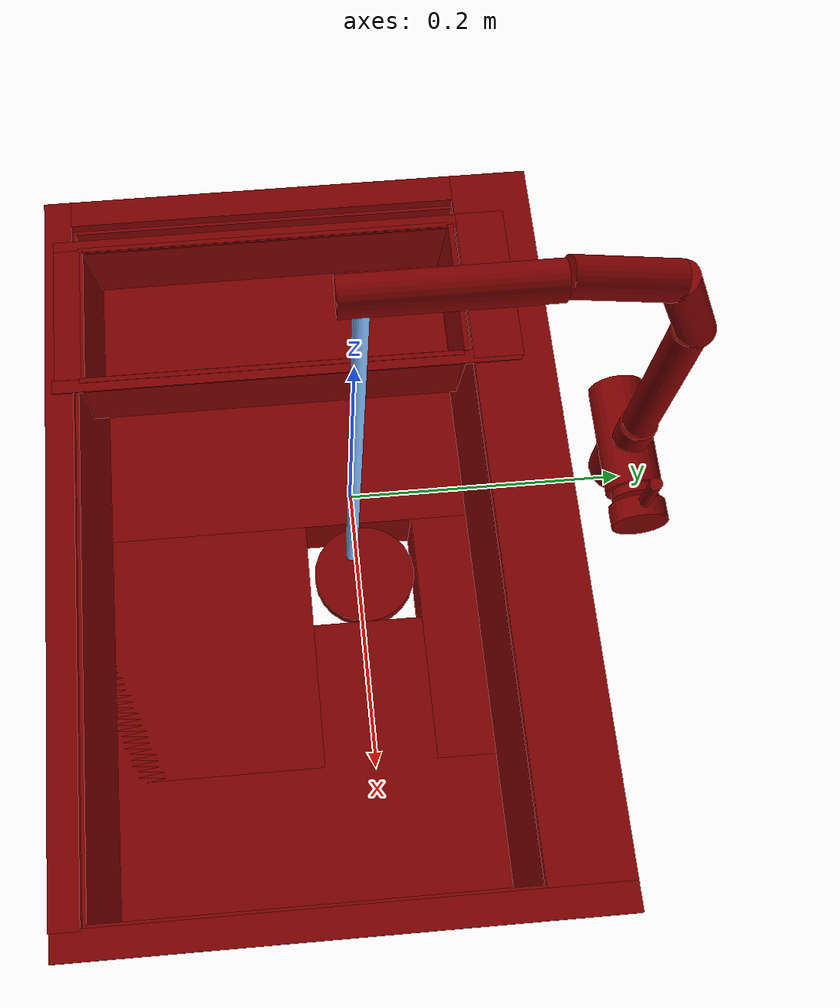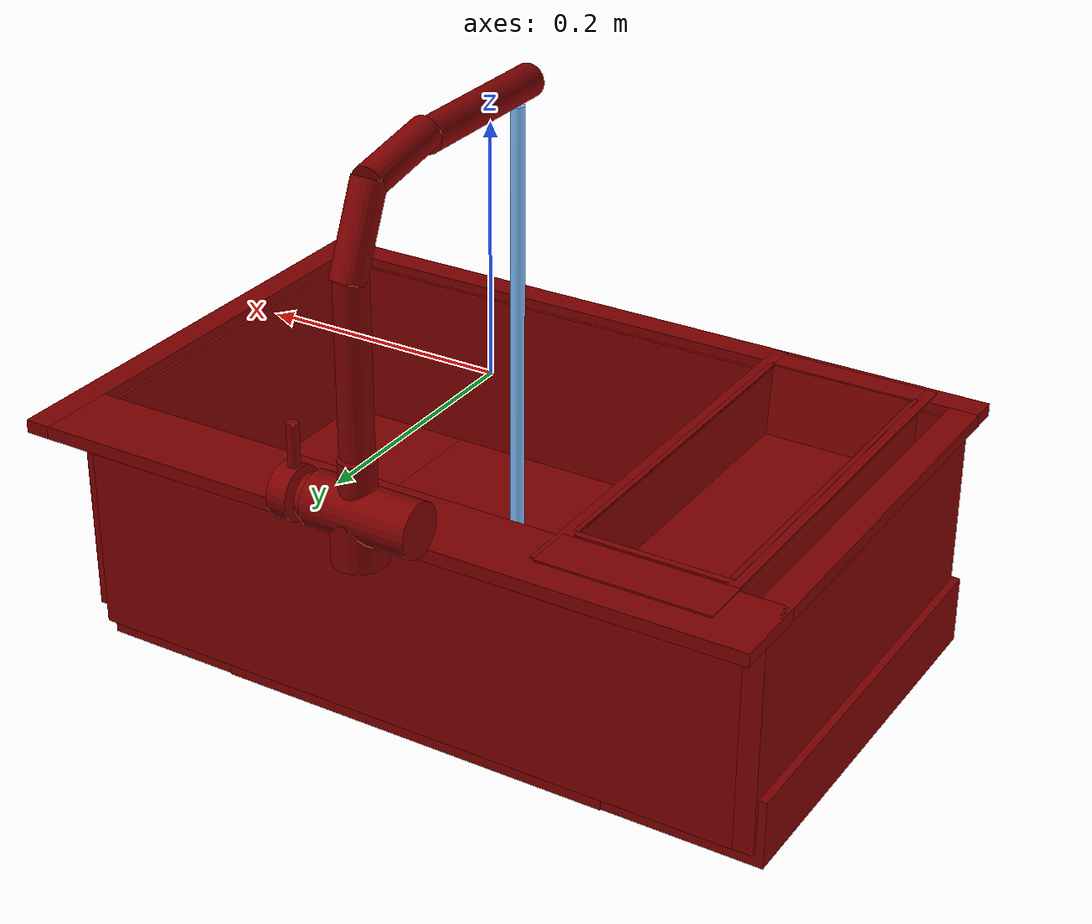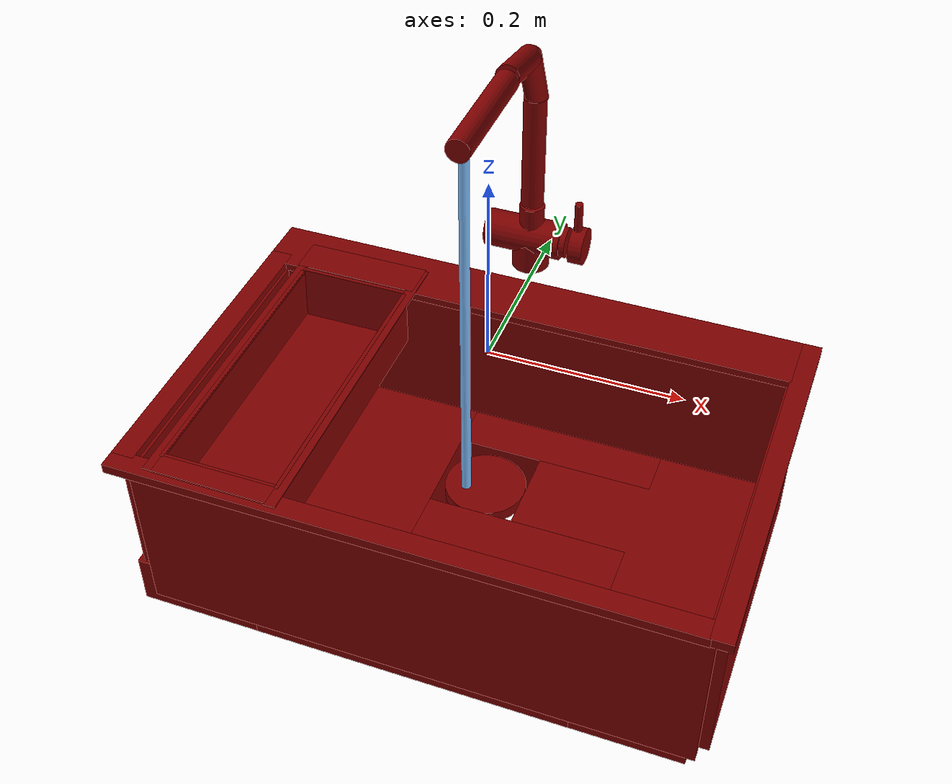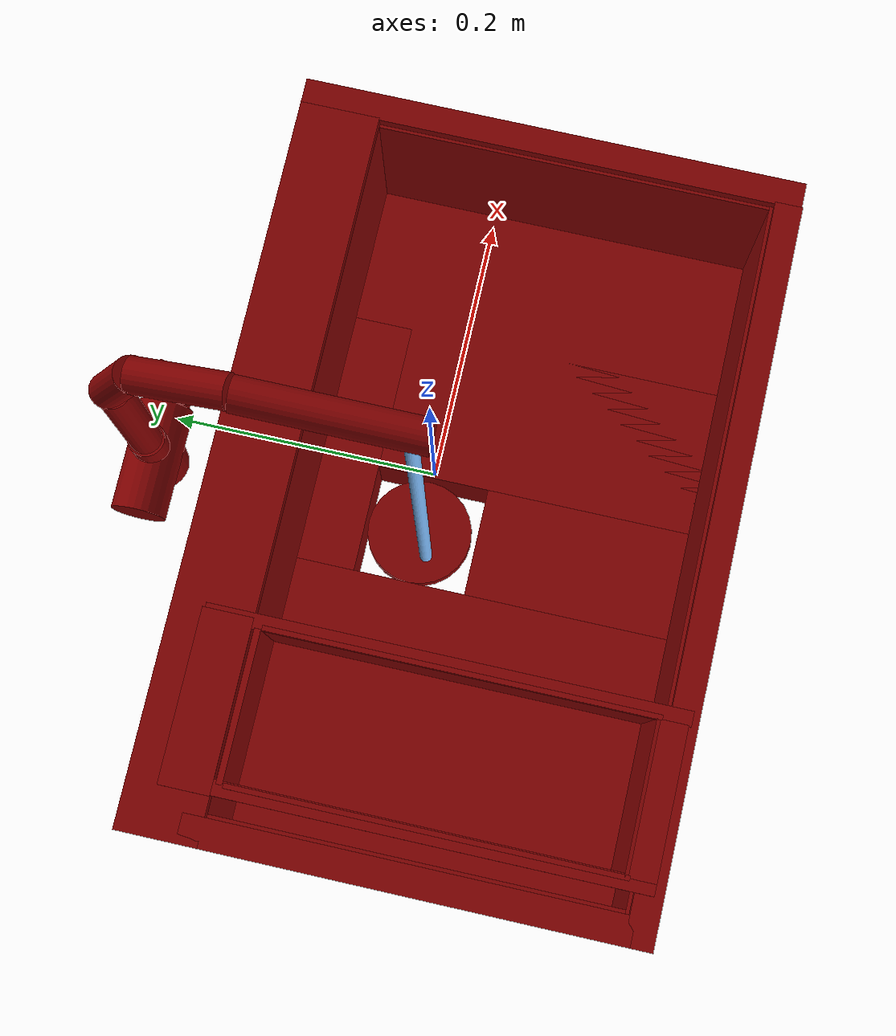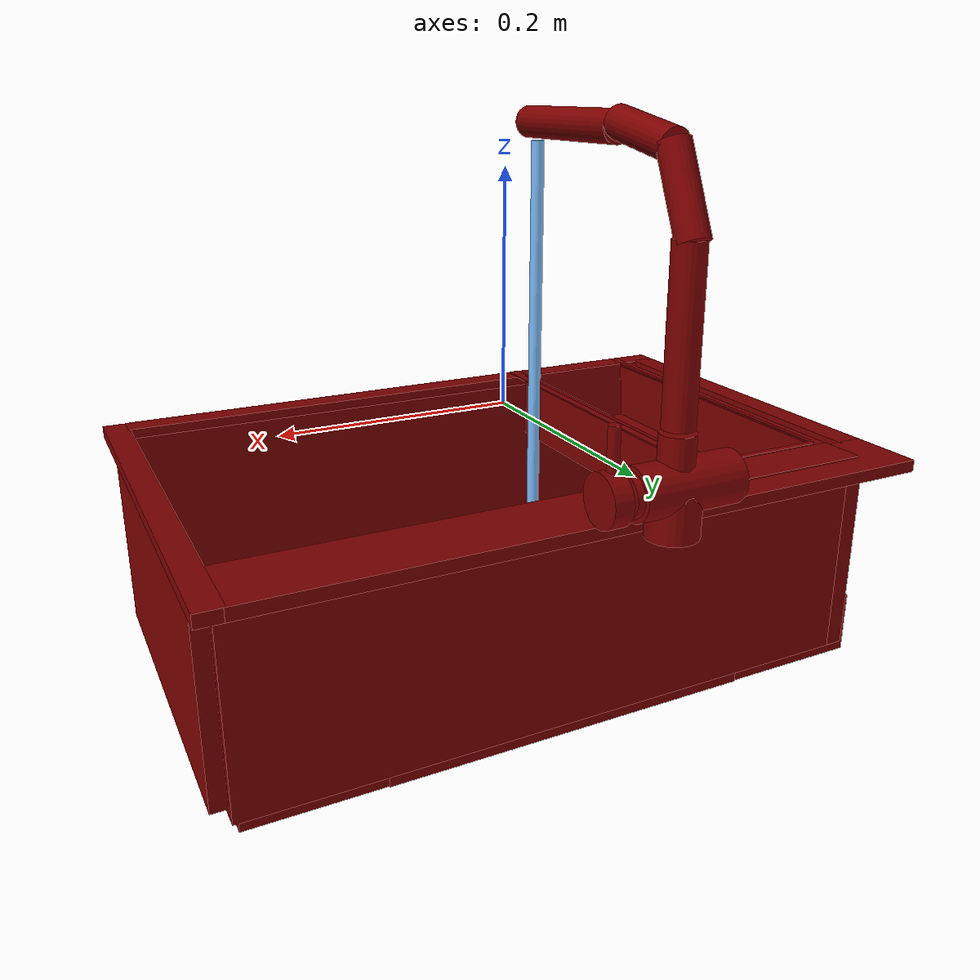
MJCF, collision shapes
<mujoco model="model">
  <compiler angle="radian"/>
  <asset>
    <mesh file="visuals/handle.obj" name="handle_vis"/>
    <mesh file="visuals/Body001.obj" name="Body001_vis"/>
    <mesh file="visuals/Funnel001.obj" name="Funnel001_vis"/>
    <mesh file="visuals/Shelf001.obj" name="Shelf001_vis"/>
    <mesh file="visuals/spout.obj" name="spout_vis"/>
    <texture file="visuals/T_BC001.png" name="Body001_material" type="2d"/>
    <material name="Body001_material" rgba="1 1 1 1.0" texture="Body001_material" shininess="0.2512328028678894" specular="0.3103448502657381"/>
    <texture file="visuals/T_BC001.png" name="handle_material" type="2d"/>
    <material name="handle_material" rgba="1 1 1 1.0" texture="handle_material" shininess="0.2512328028678894" specular="0.3103448502657381"/>
    <texture file="visuals/T_BC001.png" name="Funnel001_material" type="2d"/>
    <material name="Funnel001_material" rgba="1 1 1 1.0" texture="Funnel001_material" shininess="0.2512328028678894" specular="0.3103448502657381"/>
    <texture file="visuals/T_BC001.png" name="Shelf001_material" type="2d"/>
    <material name="Shelf001_material" rgba="1 1 1 1.0" texture="Shelf001_material" shininess="0.2512328028678894" specular="0.3103448502657381"/>
    <texture file="visuals/T_BC001.png" name="spout_material" type="2d"/>
    <material name="spout_material" rgba="1 1 1 1.0" texture="spout_material" shininess="0.2512328028678894" specular="0.3103448502657381"/>
  </asset>
  <default>
    <default class="visual">
      <geom conaffinity="0" contype="0" group="1" type="mesh"/>
    </default>
    <default class="collision">
      <geom group="0" rgba="0.5 0 0 0.5"/>
    </default>
    <default class="spawn">
      <geom group="0" rgba="1 1 1 0.5" contype="0" conaffinity="0"/>
      <site group="0" rgba="1 1 1 0.5"/>
    </default>
    <default class="region">
      <geom group="1" conaffinity="0" contype="0" rgba="0 1 0 0"/>
    </default>
  </default>
  <worldbody>
    <body>
      <body name="object">
        <geom mesh="Body001_vis" type="mesh" solimp="0.998 0.998 0.001" solref="0.001 1" density="100" friction="0.95 0.3 0.1" class="visual" material="Body001_material"/>
        <geom class="collision" type="box" pos="0.298046 -0.027981 -0.050279" size="0.011021708138287067 0.20660392940044403 0.005416826345026493" quat="1.0 0.0 0.0 0.0"/>
        <geom class="collision" type="box" pos="-0.010050 0.146002 -0.050279" size="0.2988186776638031 0.03262164443731308 0.005416826345026493" quat="1.0 0.0 0.0 0.0"/>
        <geom class="collision" type="box" pos="-0.010050 -0.224132 -0.050279" size="0.2988186776638031 0.01132323406636715 0.005416826345026493" quat="1.0 0.0 0.0 0.0"/>
        <geom class="collision" type="box" pos="-0.296911 -0.043641 -0.050279" size="0.011957335285842419 0.17406632006168365 0.005416826345026493" quat="1.0 0.0 0.0 0.0"/>
        <geom class="collision" type="box" pos="-0.290275 -0.043692 -0.149051" size="0.008330642245709896 0.17521068453788757 0.09585373848676682" quat="1.0 0.0 0.0 0.0"/>
        <geom class="collision" type="box" pos="0.000688 -0.216019 -0.149247" size="0.29166504740715027 0.006131251808255911 0.09615682810544968" quat="1.0 0.0 0.0 0.0"/>
        <geom class="collision" type="box" pos="0.000331 0.122193 -0.149189" size="0.2884378731250763 0.009302007034420967 0.09602254629135132" quat="1.0 0.0 0.0 0.0"/>
        <geom class="collision" type="box" pos="0.293617 -0.044445 -0.145353" size="0.009220490232110023 0.16718317568302155 0.09164467453956604" quat="1.0 0.0 0.0 0.0"/>
        <geom class="collision" type="box" pos="0.161722 -0.046945 -0.227153" size="0.12198605388402939 0.1747555136680603 0.028801877051591873" quat="1.0 0.0 0.0 0.0"/>
        <geom class="collision" type="cylinder" pos="-0.026682 0.212693 -0.027524" size="0.020769257098436356 0.018180131912231445" quat="1.0 0.0 0.0 0.0"/>
        <geom class="collision" type="cylinder" pos="-0.026623 0.212587 0.020040" size="0.0139413271099329 0.013050315901637077" quat="1.0 0.0 0.0 0.0"/>
        <geom class="collision" type="cylinder" pos="-0.033576 0.212559 -0.007513" size="0.02091388590633869 0.04293079674243927" quat="0.7071068286895752 -0.0 0.7071067690849304 0.0"/>
        <geom class="collision" type="box" pos="-0.179403 -0.046945 -0.227153" size="0.12569254636764526 0.1747555136680603 0.02880202792584896" quat="1.0 0.0 0.0 0.0"/>
        <geom class="collision" type="box" pos="-0.003865 -0.127903 -0.227153" size="0.1695435792207718 0.09398515522480011 0.028801877051591873" quat="1.0 0.0 0.0 0.0"/>
        <geom class="collision" type="box" pos="-0.003865 0.095914 -0.227153" size="0.16954392194747925 0.03311701491475105 0.028801927343010902" quat="1.0 0.0 0.0 0.0"/>
        <geom class="collision" type="cylinder" pos="0.007854 0.212559 -0.007513" size="0.0172232948243618 0.008040770888328552" quat="0.7071068286895752 -0.0 0.7071067690849304 0.0"/>
        <body name="handle">
          <joint axis="1.0 0.0 0.0" pos="0.026566 0.212620 -0.007407" limited="true" name="handle_joint_hinge_0" type="hinge" range="-0.7853981633974483 0.7853981633974483" damping="1" frictionloss="1" armature=".01" stiffness="0.05"/>
          <joint axis="0.0 1.0 0.0" pos="0.026566 0.212620 -0.007407" limited="true" name="handle_joint_hinge_1" type="hinge" range="0.0 0.17453292519943295" damping="1" frictionloss="1" armature=".01" stiffness="0.05"/>
          <geom mesh="handle_vis" type="mesh" solimp="0.998 0.998 0.001" solref="0.001 1" density="100" friction="0.95 0.3 0.1" class="visual" material="handle_material"/>
          <geom class="collision" type="cylinder" pos="0.026658 0.212587 0.029177" size="0.004596827086061239 0.01729632541537285" quat="1.0 0.0 0.0 0.0"/>
          <geom class="collision" type="cylinder" pos="0.028831 0.212559 -0.007513" size="0.02091388590633869 0.007866038009524345" quat="0.7071068286895752 -0.0 0.7071067690849304 0.0"/>
        </body>
        <body name="Funnel001">
          <joint axis="0.0 0.0 1.0" pos="-0.007144 0.015841 -0.217424" limited="true" name="Funnel001_joint" range="0.0 0.1" type="slide" damping="1" frictionloss="1" armature=".01" stiffness="0.05"/>
          <geom mesh="Funnel001_vis" type="mesh" solimp="0.998 0.998 0.001" solref="0.001 1" density="100" friction="0.95 0.3 0.1" class="visual" material="Funnel001_material"/>
          <geom class="collision" type="cylinder" pos="-0.007677 0.015944 -0.214012" size="0.04489539563655853 0.007146675605326891" quat="1.0 0.0 0.0 0.0"/>
        </body>
        <body name="Shelf001">
          <joint axis="0.0 0.0 1.0" pos="-0.197713 -0.045528 -0.071073" limited="true" name="Shelf001_joint" range="0.0 0.1" type="slide" damping="1" frictionloss="1" armature=".01" stiffness="0.05"/>
          <geom mesh="Shelf001_vis" type="mesh" solimp="0.998 0.998 0.001" solref="0.001 1" density="100" friction="0.95 0.3 0.1" class="visual" material="Shelf001_material"/>
          <geom class="collision" type="box" pos="-0.136288 -0.050932 -0.075066" size="0.002058111596852541 0.1563767045736313 0.03274429216980934" quat="1.0 0.0 0.0 0.0"/>
          <geom class="collision" type="box" pos="-0.258956 -0.050932 -0.075066" size="0.0020581125281751156 0.15637703239917755 0.032744333148002625" quat="1.0 0.0 0.0 0.0"/>
          <geom class="collision" type="box" pos="-0.198310 -0.201873 -0.075066" size="0.0606623999774456 0.0025869894307106733 0.03274451941251755" quat="0.9984028935432434 0.056495100259780884 -2.965359116196859e-17 1.6343653745685047e-18"/>
          <geom class="collision" type="box" pos="-0.198310 0.106256 -0.074906" size="0.0606623999774456 0.002586992923170328 0.032744549214839935" quat="0.9993682503700256 -0.035540804266929626 2.114895850942301e-17 8.69201491068298e-19"/>
          <geom class="collision" type="box" pos="-0.198310 -0.048598 -0.102333" size="0.0606623999774456 0.15571284294128418 0.0010605234419927" quat="1.0 0.0 0.0 0.0"/>
          <geom class="collision" type="box" pos="-0.198310 -0.215729 -0.043667" size="0.0606623999774456 0.012024065479636192 0.0010932263685390353" quat="1.0 0.0 0.0 0.0"/>
          <geom class="collision" type="box" pos="-0.199579 0.133786 -0.043340" size="0.0694010928273201 0.02044958434998989 0.0006955183343961835" quat="1.0 0.0 0.0 0.0"/>
          <geom class="collision" type="box" pos="-0.132585 -0.038906 -0.043405" size="0.006222839001566172 0.19085846841335297 0.0006955178105272353" quat="1.0 0.0 0.0 0.0"/>
          <geom class="collision" type="box" pos="-0.262063 -0.039640 -0.043405" size="0.006222790107131004 0.1880197674036026 0.0006955123390071094" quat="1.0 0.0 0.0 0.0"/>
        </body>
        <body name="spout">
          <joint axis="0.0 0.0 1.0" pos="-0.026583 0.212615 0.138430" limited="true" name="spout_joint" range="-0.7853981633974483 0.7853981633974483" type="hinge" damping="1" frictionloss="1" armature=".01" stiffness="0.05"/>
          <site type="cylinder" rgba="0.5 0.75 1 1" size="0.005293175112456083 0.22727230191230774" pos="-0.026629 0.005967 -0.007502" name="water"/>
          <geom mesh="spout_vis" type="mesh" solimp="0.998 0.998 0.001" solref="0.001 1" density="100" friction="0.95 0.3 0.1" class="visual" material="spout_material"/>
          <geom class="collision" type="cylinder" pos="-0.026663 0.056423 0.233874" size="0.012544616125524044 0.06533466279506683" quat="0.7071067094802856 0.7071068286895752 0.0 0.0"/>
          <geom class="collision" type="cylinder" pos="-0.026663 0.212390 0.101221" size="0.012544616125524044 0.06533466279506683" quat="1.0 1.1920928955078125e-07 0.0 0.0"/>
          <geom class="collision" type="cylinder" pos="-0.026663 0.202119 0.195739" size="0.012544616125524044 0.03451940789818764" quat="0.9777047038078308 0.20998446643352509 0.0 0.0"/>
          <geom class="collision" type="cylinder" pos="-0.026663 0.156094 0.230863" size="0.012544616125524044 0.034519411623477936" quat="0.7709115147590637 0.6369422674179077 0.0 0.0"/>
        </body>
        <geom class="region" name="reg_main" type="box" pos="0.0 -0.0288925 -0.145752" size="0.309535 0.2072855 0.100532"/>
        <geom class="region" name="reg_basin" type="box" pos="0.0782685 -0.04963 -0.1263555" size="0.2026905 0.160909 0.0696485"/>
      </body>
    </body>
  </worldbody>
  <actuator>
    <motor name="handle_joint_hinge_0_actuator" joint="handle_joint_hinge_0" gear="10"/>
    <motor name="handle_joint_hinge_1_actuator" joint="handle_joint_hinge_1" gear="10"/>
    <motor name="Funnel001_joint_actuator" joint="Funnel001_joint" gear="10"/>
    <motor name="Shelf001_joint_actuator" joint="Shelf001_joint" gear="10"/>
    <motor name="spout_joint_actuator" joint="spout_joint" gear="10"/>
  </actuator>
</mujoco>
